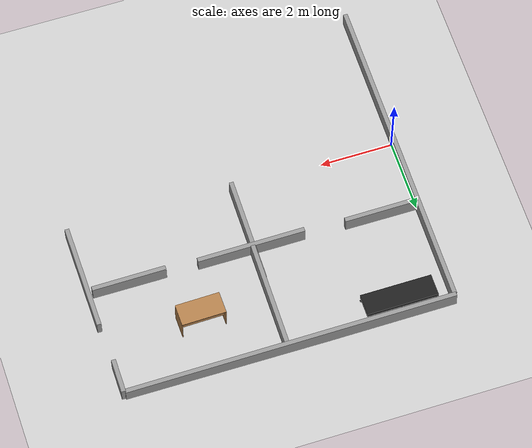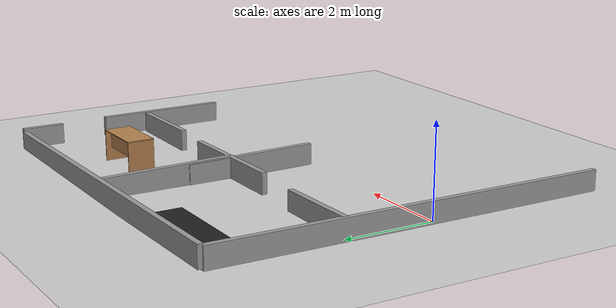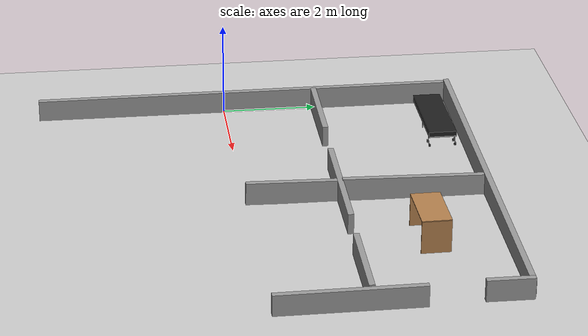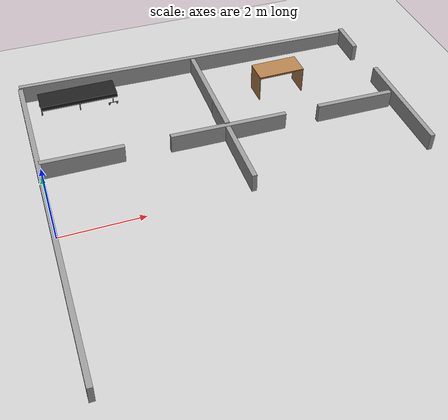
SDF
<sdf version="1.7">
 <world name="default">
  <model name="ground_plane">
   <static>1</static>
   <link name="link">
    <collision name="collision">
     <geometry><plane><normal>0 0 1</normal><size>100 100</size></plane></geometry>
     <surface><friction><ode><mu>100</mu><mu2>50</mu2></ode></friction></surface>
    </collision>
    <visual name="visual">
     <cast_shadows>0</cast_shadows>
     <geometry><plane><normal>0 0 1</normal><size>100 100</size></plane></geometry>
     <material>
      <script><uri>file://media/materials/scripts/gazebo.material</uri><name>Gazebo/Grey</name></script>
     </material>
    </visual>
   </link>
  </model>
  <model name="wall">
   <link name="link">
    <inertial>
     <mass>1</mass>
     <inertia>
      <ixx>0.166667</ixx>
      <ixy>0</ixy>
      <ixz>0</ixz>
      <iyy>0.166667</iyy>
      <iyz>0</iyz>
      <izz>0.166667</izz>
     </inertia>
    </inertial>
    <visual name="visual">
     <geometry><box><size>0.120264 8.94791 0.469751</size></box></geometry>
     <material>
      <script><name>Gazebo/Grey</name><uri>file://media/materials/scripts/gazebo.material</uri></script>
      <shader type="pixel"/>
     </material>
    </visual>
    <collision name="collision">
     <geometry><box><size>0.120264 8.94791 0.469751</size></box></geometry>
     <surface>
      <friction>
       <ode><mu>1</mu><mu2>1</mu2><fdir1>0 0 0</fdir1><slip1>0</slip1><slip2>0</slip2></ode>
       <torsional>
        <coefficient>1</coefficient>
        <patch_radius>0</patch_radius>
        <surface_radius>0</surface_radius>
        <use_patch_radius>1</use_patch_radius>
        <ode><slip>0</slip></ode>
       </torsional>
      </friction>
      <bounce><restitution_coefficient>0</restitution_coefficient><threshold>1e+06</threshold></bounce>
      <contact>
       <collide_without_contact>0</collide_without_contact>
       <collide_without_contact_bitmask>1</collide_without_contact_bitmask>
       <collide_bitmask>1</collide_bitmask>
       <ode>
        <soft_cfm>0</soft_cfm>
        <soft_erp>0.2</soft_erp>
        <kp>1e+13</kp>
        <kd>1</kd>
        <max_vel>0.01</max_vel>
        <min_depth>0</min_depth>
       </ode>
       <bullet>
        <split_impulse>1</split_impulse>
        <split_impulse_penetration_threshold>-0.01</split_impulse_penetration_threshold>
        <soft_cfm>0</soft_cfm>
        <soft_erp>0.2</soft_erp>
        <kp>1e+13</kp>
        <kd>1</kd>
       </bullet>
      </contact>
     </surface>
    </collision>
   </link>
   <static>1</static>
   <pose>-0.031703 0.436973 0.219564 0.003622 0.015237 -0.004097</pose>
  </model>
  <model name="wall_clone_clone">
   <link name="link">
    <inertial>
     <mass>1</mass>
     <inertia>
      <ixx>0.166667</ixx>
      <ixy>0</ixy>
      <ixz>0</ixz>
      <iyy>0.166667</iyy>
      <iyz>0</iyz>
      <izz>0.166667</izz>
     </inertia>
    </inertial>
    <visual name="visual">
     <geometry><box><size>0.120264 8.94791 0.469751</size></box></geometry>
     <material>
      <script><name>Gazebo/Grey</name><uri>file://media/materials/scripts/gazebo.material</uri></script>
      <shader type="pixel"/>
     </material>
    </visual>
    <collision name="collision">
     <geometry><box><size>0.120264 8.94791 0.469751</size></box></geometry>
     <surface>
      <friction>
       <ode><mu>1</mu><mu2>1</mu2><fdir1>0 0 0</fdir1><slip1>0</slip1><slip2>0</slip2></ode>
       <torsional>
        <coefficient>1</coefficient>
        <patch_radius>0</patch_radius>
        <surface_radius>0</surface_radius>
        <use_patch_radius>1</use_patch_radius>
        <ode><slip>0</slip></ode>
       </torsional>
      </friction>
      <bounce><restitution_coefficient>0</restitution_coefficient><threshold>1e+06</threshold></bounce>
      <contact>
       <collide_without_contact>0</collide_without_contact>
       <collide_without_contact_bitmask>1</collide_without_contact_bitmask>
       <collide_bitmask>1</collide_bitmask>
       <ode>
        <soft_cfm>0</soft_cfm>
        <soft_erp>0.2</soft_erp>
        <kp>1e+13</kp>
        <kd>1</kd>
        <max_vel>0.01</max_vel>
        <min_depth>0</min_depth>
       </ode>
       <bullet>
        <split_impulse>1</split_impulse>
        <split_impulse_penetration_threshold>-0.01</split_impulse_penetration_threshold>
        <soft_cfm>0</soft_cfm>
        <soft_erp>0.2</soft_erp>
        <kp>1e+13</kp>
        <kd>1</kd>
       </bullet>
      </contact>
     </surface>
    </collision>
   </link>
   <static>1</static>
   <pose>4.43315 4.93384 0.206052 -0.015237 0.003622 -1.57495</pose>
  </model>
  <model name="wall_3m">
   <link name="link">
    <inertial>
     <mass>0.327712</mass>
     <inertia>
      <ixx>0.240849</ixx>
      <ixy>0</ixy>
      <ixz>0</ixz>
      <iyy>0.00642123</iyy>
      <iyz>0</iyz>
      <izz>0.235218</izz>
     </inertia>
    </inertial>
    <visual name="visual">
     <geometry><box><size>0.120264 2.93234 0.469751</size></box></geometry>
     <material>
      <script><name>Gazebo/Grey</name><uri>file://media/materials/scripts/gazebo.material</uri></script>
      <shader type="pixel"/>
     </material>
    </visual>
    <collision name="collision">
     <geometry><box><size>0.120264 2.93234 0.469751</size></box></geometry>
     <surface>
      <friction>
       <ode><mu>1</mu><mu2>1</mu2><fdir1>0 0 0</fdir1><slip1>0</slip1><slip2>0</slip2></ode>
       <torsional>
        <coefficient>1</coefficient>
        <patch_radius>0</patch_radius>
        <surface_radius>0</surface_radius>
        <use_patch_radius>1</use_patch_radius>
        <ode><slip>0</slip></ode>
       </torsional>
      </friction>
      <bounce><restitution_coefficient>0</restitution_coefficient><threshold>1e+06</threshold></bounce>
      <contact>
       <collide_without_contact>0</collide_without_contact>
       <collide_without_contact_bitmask>1</collide_without_contact_bitmask>
       <collide_bitmask>1</collide_bitmask>
       <ode>
        <soft_cfm>0</soft_cfm>
        <soft_erp>0.2</soft_erp>
        <kp>1e+13</kp>
        <kd>1</kd>
        <max_vel>0.01</max_vel>
        <min_depth>0</min_depth>
       </ode>
       <bullet>
        <split_impulse>1</split_impulse>
        <split_impulse_penetration_threshold>-0.01</split_impulse_penetration_threshold>
        <soft_cfm>0</soft_cfm>
        <soft_erp>0.2</soft_erp>
        <kp>1e+13</kp>
        <kd>1</kd>
       </bullet>
      </contact>
     </surface>
    </collision>
   </link>
   <static>1</static>
   <pose>4.56342 1.92073 0.210327 -0.015237 0.003622 -1.57495</pose>
  </model>
  <model name="wall_3m_clone_0">
   <link name="link">
    <inertial>
     <mass>0.327712</mass>
     <inertia>
      <ixx>0.240849</ixx>
      <ixy>0</ixy>
      <ixz>0</ixz>
      <iyy>0.00642123</iyy>
      <iyz>0</iyz>
      <izz>0.235218</izz>
     </inertia>
    </inertial>
    <visual name="visual">
     <geometry><box><size>0.120264 2.93234 0.469751</size></box></geometry>
     <material>
      <script><name>Gazebo/Grey</name><uri>file://media/materials/scripts/gazebo.material</uri></script>
      <shader type="pixel"/>
     </material>
    </visual>
    <collision name="collision">
     <geometry><box><size>0.120264 2.93234 0.469751</size></box></geometry>
     <surface>
      <friction>
       <ode><mu>1</mu><mu2>1</mu2><fdir1>0 0 0</fdir1><slip1>0</slip1><slip2>0</slip2></ode>
       <torsional>
        <coefficient>1</coefficient>
        <patch_radius>0</patch_radius>
        <surface_radius>0</surface_radius>
        <use_patch_radius>1</use_patch_radius>
        <ode><slip>0</slip></ode>
       </torsional>
      </friction>
      <bounce><restitution_coefficient>0</restitution_coefficient><threshold>1e+06</threshold></bounce>
      <contact>
       <collide_without_contact>0</collide_without_contact>
       <collide_without_contact_bitmask>1</collide_without_contact_bitmask>
       <collide_bitmask>1</collide_bitmask>
       <ode>
        <soft_cfm>0</soft_cfm>
        <soft_erp>0.2</soft_erp>
        <kp>1e+13</kp>
        <kd>1</kd>
        <max_vel>0.01</max_vel>
        <min_depth>0</min_depth>
       </ode>
       <bullet>
        <split_impulse>1</split_impulse>
        <split_impulse_penetration_threshold>-0.01</split_impulse_penetration_threshold>
        <soft_cfm>0</soft_cfm>
        <soft_erp>0.2</soft_erp>
        <kp>1e+13</kp>
        <kd>1</kd>
       </bullet>
      </contact>
     </surface>
    </collision>
   </link>
   <static>1</static>
   <pose>4.5141 1.46532 0.210327 -0.015237 0.003622 -0.006735</pose>
  </model>
  <model name="wall_3m_clone_0_clone">
   <link name="link">
    <inertial>
     <mass>0.327712</mass>
     <inertia>
      <ixx>0.240849</ixx>
      <ixy>0</ixy>
      <ixz>0</ixz>
      <iyy>0.00642123</iyy>
      <iyz>0</iyz>
      <izz>0.235218</izz>
     </inertia>
    </inertial>
    <visual name="visual">
     <geometry><box><size>0.120264 2.93234 0.469751</size></box></geometry>
     <material>
      <script><name>Gazebo/Grey</name><uri>file://media/materials/scripts/gazebo.material</uri></script>
      <shader type="pixel"/>
     </material>
    </visual>
    <collision name="collision">
     <geometry><box><size>0.120264 2.93234 0.469751</size></box></geometry>
     <surface>
      <friction>
       <ode><mu>1</mu><mu2>1</mu2><fdir1>0 0 0</fdir1><slip1>0</slip1><slip2>0</slip2></ode>
       <torsional>
        <coefficient>1</coefficient>
        <patch_radius>0</patch_radius>
        <surface_radius>0</surface_radius>
        <use_patch_radius>1</use_patch_radius>
        <ode><slip>0</slip></ode>
       </torsional>
      </friction>
      <bounce><restitution_coefficient>0</restitution_coefficient><threshold>1e+06</threshold></bounce>
      <contact>
       <collide_without_contact>0</collide_without_contact>
       <collide_without_contact_bitmask>1</collide_without_contact_bitmask>
       <collide_bitmask>1</collide_bitmask>
       <ode>
        <soft_cfm>0</soft_cfm>
        <soft_erp>0.2</soft_erp>
        <kp>1e+13</kp>
        <kd>1</kd>
        <max_vel>0.01</max_vel>
        <min_depth>0</min_depth>
       </ode>
       <bullet>
        <split_impulse>1</split_impulse>
        <split_impulse_penetration_threshold>-0.01</split_impulse_penetration_threshold>
        <soft_cfm>0</soft_cfm>
        <soft_erp>0.2</soft_erp>
        <kp>1e+13</kp>
        <kd>1</kd>
       </bullet>
      </contact>
     </surface>
    </collision>
   </link>
   <static>1</static>
   <pose>4.54501 3.42766 0.210327 -0.015237 0.003622 -0.006735</pose>
  </model>
  <model name="wall_2m">
   <link name="link">
    <inertial>
     <mass>0.223772</mass>
     <inertia>
      <ixx>0.0788765</ixx>
      <ixy>0</ixy>
      <ixz>0</ixz>
      <iyy>0.00438461</iyy>
      <iyz>0</iyz>
      <izz>0.0750313</izz>
     </inertia>
    </inertial>
    <pose>0.058217 -0.377225 -0.005198 0 -0 0</pose>
    <visual name="visual">
     <geometry><box><size>0.120264 2.00229 0.469751</size></box></geometry>
     <material>
      <script><name>Gazebo/Grey</name><uri>file://media/materials/scripts/gazebo.material</uri></script>
      <shader type="pixel"/>
     </material>
    </visual>
    <collision name="collision">
     <geometry><box><size>0.120264 2.00229 0.469751</size></box></geometry>
     <surface>
      <friction>
       <ode><mu>1</mu><mu2>1</mu2><fdir1>0 0 0</fdir1><slip1>0</slip1><slip2>0</slip2></ode>
       <torsional>
        <coefficient>1</coefficient>
        <patch_radius>0</patch_radius>
        <surface_radius>0</surface_radius>
        <use_patch_radius>1</use_patch_radius>
        <ode><slip>0</slip></ode>
       </torsional>
      </friction>
      <bounce><restitution_coefficient>0</restitution_coefficient><threshold>1e+06</threshold></bounce>
      <contact>
       <collide_without_contact>0</collide_without_contact>
       <collide_without_contact_bitmask>1</collide_without_contact_bitmask>
       <collide_bitmask>1</collide_bitmask>
       <ode>
        <soft_cfm>0</soft_cfm>
        <soft_erp>0.2</soft_erp>
        <kp>1e+13</kp>
        <kd>1</kd>
        <max_vel>0.01</max_vel>
        <min_depth>0</min_depth>
       </ode>
       <bullet>
        <split_impulse>1</split_impulse>
        <split_impulse_penetration_threshold>-0.01</split_impulse_penetration_threshold>
        <soft_cfm>0</soft_cfm>
        <soft_erp>0.2</soft_erp>
        <kp>1e+13</kp>
        <kd>1</kd>
       </bullet>
      </contact>
     </surface>
    </collision>
   </link>
   <static>1</static>
   <pose>1.36886 2.0353 0.210327 -0.015237 0.003622 -1.57495</pose>
  </model>
  <model name="wall_2m_clone">
   <link name="link">
    <inertial>
     <mass>0.223772</mass>
     <inertia>
      <ixx>0.0788765</ixx>
      <ixy>0</ixy>
      <ixz>0</ixz>
      <iyy>0.00438461</iyy>
      <iyz>0</iyz>
      <izz>0.0750313</izz>
     </inertia>
    </inertial>
    <pose>0.058217 -0.377225 -0.005198 0 -0 0</pose>
    <visual name="visual">
     <geometry><box><size>0.120264 2.00229 0.469751</size></box></geometry>
     <material>
      <script><name>Gazebo/Grey</name><uri>file://media/materials/scripts/gazebo.material</uri></script>
      <shader type="pixel"/>
     </material>
    </visual>
    <collision name="collision">
     <geometry><box><size>0.120264 2.00229 0.469751</size></box></geometry>
     <surface>
      <friction>
       <ode><mu>1</mu><mu2>1</mu2><fdir1>0 0 0</fdir1><slip1>0</slip1><slip2>0</slip2></ode>
       <torsional>
        <coefficient>1</coefficient>
        <patch_radius>0</patch_radius>
        <surface_radius>0</surface_radius>
        <use_patch_radius>1</use_patch_radius>
        <ode><slip>0</slip></ode>
       </torsional>
      </friction>
      <bounce><restitution_coefficient>0</restitution_coefficient><threshold>1e+06</threshold></bounce>
      <contact>
       <collide_without_contact>0</collide_without_contact>
       <collide_without_contact_bitmask>1</collide_without_contact_bitmask>
       <collide_bitmask>1</collide_bitmask>
       <ode>
        <soft_cfm>0</soft_cfm>
        <soft_erp>0.2</soft_erp>
        <kp>1e+13</kp>
        <kd>1</kd>
        <max_vel>0.01</max_vel>
        <min_depth>0</min_depth>
       </ode>
       <bullet>
        <split_impulse>1</split_impulse>
        <split_impulse_penetration_threshold>-0.01</split_impulse_penetration_threshold>
        <soft_cfm>0</soft_cfm>
        <soft_erp>0.2</soft_erp>
        <kp>1e+13</kp>
        <kd>1</kd>
       </bullet>
      </contact>
     </surface>
    </collision>
   </link>
   <static>1</static>
   <pose>8.26555 1.93518 0.210327 -0.015237 0.003622 -1.57495</pose>
  </model>
  <model name="wall_3m_clone_1_clone">
   <link name="link">
    <inertial>
     <mass>0.327712</mass>
     <inertia>
      <ixx>0.240849</ixx>
      <ixy>0</ixy>
      <ixz>0</ixz>
      <iyy>0.00642123</iyy>
      <iyz>0</iyz>
      <izz>0.235218</izz>
     </inertia>
    </inertial>
    <visual name="visual">
     <geometry><box><size>0.120264 2.93234 0.469751</size></box></geometry>
     <material>
      <script><name>Gazebo/Grey</name><uri>file://media/materials/scripts/gazebo.material</uri></script>
      <shader type="pixel"/>
     </material>
    </visual>
    <collision name="collision">
     <geometry><box><size>0.120264 2.93234 0.469751</size></box></geometry>
     <surface>
      <friction>
       <ode><mu>1</mu><mu2>1</mu2><fdir1>0 0 0</fdir1><slip1>0</slip1><slip2>0</slip2></ode>
       <torsional>
        <coefficient>1</coefficient>
        <patch_radius>0</patch_radius>
        <surface_radius>0</surface_radius>
        <use_patch_radius>1</use_patch_radius>
        <ode><slip>0</slip></ode>
       </torsional>
      </friction>
      <bounce><restitution_coefficient>0</restitution_coefficient><threshold>1e+06</threshold></bounce>
      <contact>
       <collide_without_contact>0</collide_without_contact>
       <collide_without_contact_bitmask>1</collide_without_contact_bitmask>
       <collide_bitmask>1</collide_bitmask>
       <ode>
        <soft_cfm>0</soft_cfm>
        <soft_erp>0.2</soft_erp>
        <kp>1e+13</kp>
        <kd>1</kd>
        <max_vel>0.01</max_vel>
        <min_depth>0</min_depth>
       </ode>
       <bullet>
        <split_impulse>1</split_impulse>
        <split_impulse_penetration_threshold>-0.01</split_impulse_penetration_threshold>
        <soft_cfm>0</soft_cfm>
        <soft_erp>0.2</soft_erp>
        <kp>1e+13</kp>
        <kd>1</kd>
       </bullet>
      </contact>
     </surface>
    </collision>
   </link>
   <static>1</static>
   <pose>9.01173 1.46051 0.196172 -0.003765 -0.015202 -3.13632</pose>
  </model>
  <model name="wall_1">
   <link name="link">
    <inertial>
     <mass>0.104919</mass>
     <inertia>
      <ixx>0.00963536</ixx>
      <ixy>0</ixy>
      <ixz>0</ixz>
      <iyy>0.0020558</iyy>
      <iyz>0</iyz>
      <izz>0.00783247</izz>
     </inertia>
    </inertial>
    <pose>0.064305 -0.884421 -0.004848 0 -0 0</pose>
    <visual name="visual">
     <geometry><box><size>0.120264 0.93881 0.469751</size></box></geometry>
     <material>
      <script><name>Gazebo/Grey</name><uri>file://media/materials/scripts/gazebo.material</uri></script>
      <shader type="pixel"/>
     </material>
    </visual>
    <collision name="collision">
     <geometry><box><size>0.120264 0.93881 0.469751</size></box></geometry>
     <surface>
      <friction>
       <ode><mu>1</mu><mu2>1</mu2><fdir1>0 0 0</fdir1><slip1>0</slip1><slip2>0</slip2></ode>
       <torsional>
        <coefficient>1</coefficient>
        <patch_radius>0</patch_radius>
        <surface_radius>0</surface_radius>
        <use_patch_radius>1</use_patch_radius>
        <ode><slip>0</slip></ode>
       </torsional>
      </friction>
      <bounce><restitution_coefficient>0</restitution_coefficient><threshold>1e+06</threshold></bounce>
      <contact>
       <collide_without_contact>0</collide_without_contact>
       <collide_without_contact_bitmask>1</collide_without_contact_bitmask>
       <collide_bitmask>1</collide_bitmask>
       <ode>
        <soft_cfm>0</soft_cfm>
        <soft_erp>0.2</soft_erp>
        <kp>1e+13</kp>
        <kd>1</kd>
        <max_vel>0.01</max_vel>
        <min_depth>0</min_depth>
       </ode>
       <bullet>
        <split_impulse>1</split_impulse>
        <split_impulse_penetration_threshold>-0.01</split_impulse_penetration_threshold>
        <soft_cfm>0</soft_cfm>
        <soft_erp>0.2</soft_erp>
        <kp>1e+13</kp>
        <kd>1</kd>
       </bullet>
      </contact>
     </surface>
    </collision>
   </link>
   <static>1</static>
   <pose>8.88858 5.359 0.210327 0.002875 0.015396 -0.007808</pose>
  </model>
  <model name="bed">
   <link name="link">
    <inertial>
     <mass>10</mass>
     <inertia><ixx>1</ixx><ixy>0</ixy><ixz>0</ixz><iyy>1</iyy><iyz>0</iyz><izz>1</izz></inertia>
    </inertial>
    <visual name="cushion">
     <pose>-0.295 -0.975 0.2875 0 -0 0</pose>
     <geometry><box><size>0.59 1.95 0.095</size></box></geometry>
     <material>
      <script>
       <uri>model://base_materials/cloth/scripts</uri>
       <uri>model://base_materials/cloth/textures</uri>
       <name>cloth/black</name>
      </script>
     </material>
    </visual>
    <collision name="collision_cushion">
     <pose>-0.295 -0.975 0.2875 0 -0 0</pose>
     <geometry><box><size>0.59 1.95 0.095</size></box></geometry>
    </collision>
    <visual name="top_frame">
     <pose>-0.295 -0.975 0.225 0 -0 0</pose>
     <geometry><box><size>0.59 1.95 0.03</size></box></geometry>
     <material>
      <script><uri>model://base_materials/color/scripts</uri><name>hsr_color/grey</name></script>
     </material>
    </visual>
    <collision name="collision_top_frame">
     <pose>-0.295 -0.975 0.225 0 -0 0</pose>
     <geometry><box><size>0.59 1.95 0.03</size></box></geometry>
    </collision>
    <visual name="right_front_pole">
     <pose>-0.075 -0.0125 0.125 0 -0 0</pose>
     <geometry><cylinder><radius>0.0125</radius><length>0.17</length></cylinder></geometry>
     <material>
      <script><uri>model://base_materials/color/scripts</uri><name>hsr_color/grey</name></script>
     </material>
    </visual>
    <collision name="collision_right_front_pole">
     <pose>-0.075 -0.0125 0.125 0 -0 0</pose>
     <geometry><cylinder><radius>0.0125</radius><length>0.17</length></cylinder></geometry>
    </collision>
    <visual name="right_front_caster">
     <pose>-0.075 -0.0125 0.02 0 1.57 0</pose>
     <geometry><cylinder><radius>0.02</radius><length>0.04</length></cylinder></geometry>
     <material><script><name>Gazebo/Black</name><uri>__default__</uri></script></material>
    </visual>
    <collision name="collision_right_front_caster">
     <pose>-0.075 -0.0125 0.02 0 1.57 0</pose>
     <geometry><cylinder><radius>0.02</radius><length>0.04</length></cylinder></geometry>
    </collision>
    <visual name="right_back_pole">
     <pose>-0.46 -0.0125 0.125 0 -0 0</pose>
     <geometry><cylinder><radius>0.0125</radius><length>0.17</length></cylinder></geometry>
     <material>
      <script><uri>model://base_materials/color/scripts</uri><name>hsr_color/grey</name></script>
     </material>
    </visual>
    <collision name="collision_right_back_pole">
     <pose>-0.46 -0.0125 0.125 0 -0 0</pose>
     <geometry><cylinder><radius>0.0125</radius><length>0.17</length></cylinder></geometry>
    </collision>
    <visual name="right_back_caster">
     <pose>-0.46 -0.0125 0.02 0 1.57 0</pose>
     <geometry><cylinder><radius>0.02</radius><length>0.04</length></cylinder></geometry>
     <material><script><name>Gazebo/Black</name><uri>__default__</uri></script></material>
    </visual>
    <collision name="collision_back_front_caster">
     <pose>-0.46 -0.0125 0.02 0 1.57 0</pose>
     <geometry><cylinder><radius>0.02</radius><length>0.04</length></cylinder></geometry>
    </collision>
    <visual name="center_front_pole">
     <pose>-0.0425 -0.975 0.105 0 -0 0</pose>
     <geometry><cylinder><radius>0.0125</radius><length>0.21</length></cylinder></geometry>
     <material>
      <script><uri>model://base_materials/color/scripts</uri><name>hsr_color/grey</name></script>
     </material>
    </visual>
    <collision name="collision_center_front_pole">
     <pose>-0.0425 -0.975 0.105 0 -0 0</pose>
     <geometry><cylinder><radius>0.0125</radius><length>0.17</length></cylinder></geometry>
    </collision>
    <visual name="center_back_pole">
     <pose>-0.5475 -0.975 0.105 0 -0 0</pose>
     <geometry><cylinder><radius>0.0125</radius><length>0.21</length></cylinder></geometry>
     <material>
      <script><uri>model://base_materials/color/scripts</uri><name>hsr_color/grey</name></script>
     </material>
    </visual>
    <collision name="collision_center_back_pole">
     <pose>-0.5475 -0.975 0.105 0 -0 0</pose>
     <geometry><cylinder><radius>0.0125</radius><length>0.17</length></cylinder></geometry>
    </collision>
    <visual name="left_front_horizon_pole">
     <pose>-0.01 -1.825 0.06 1.57 -0 0</pose>
     <geometry><cylinder><radius>0.01</radius><length>0.25</length></cylinder></geometry>
     <material>
      <script><uri>model://base_materials/color/scripts</uri><name>hsr_color/grey</name></script>
     </material>
    </visual>
    <collision name="collision_left_front_horizon_pole">
     <pose>-0.01 -1.825 0.06 1.57 -0 0</pose>
     <geometry><cylinder><radius>0.01</radius><length>0.25</length></cylinder></geometry>
    </collision>
    <visual name="left_front_vertical_pole">
     <pose>-0.01 -1.825 0.14 0 -0 0</pose>
     <geometry><cylinder><radius>0.01</radius><length>0.14</length></cylinder></geometry>
     <material>
      <script><uri>model://base_materials/color/scripts</uri><name>hsr_color/grey</name></script>
     </material>
    </visual>
    <collision name="collision_left_front_vertical_pole">
     <pose>-0.01 -1.825 0.14 0 -0 0</pose>
     <geometry><cylinder><radius>0.01</radius><length>0.14</length></cylinder></geometry>
    </collision>
    <visual name="left_front_caster_r">
     <pose>-0.02 -1.725 0.025 0 1.57 0</pose>
     <geometry><cylinder><radius>0.025</radius><length>0.04</length></cylinder></geometry>
     <material><script><name>Gazebo/Black</name><uri>__default__</uri></script></material>
    </visual>
    <collision name="collision_left_front_caster_r">
     <pose>-0.02 -1.725 0.025 0 1.57 0</pose>
     <geometry><cylinder><radius>0.025</radius><length>0.04</length></cylinder></geometry>
    </collision>
    <visual name="left_front_caster_l">
     <pose>-0.02 -1.925 0.025 0 1.57 0</pose>
     <geometry><cylinder><radius>0.025</radius><length>0.04</length></cylinder></geometry>
     <material><script><name>Gazebo/Black</name><uri>__default__</uri></script></material>
    </visual>
    <collision name="collision_left_front_caster_l">
     <pose>-0.02 -1.925 0.025 0 1.57 0</pose>
     <geometry><cylinder><radius>0.025</radius><length>0.04</length></cylinder></geometry>
    </collision>
    <visual name="left_back_horizon_pole">
     <pose>-0.58 -1.825 0.06 1.57 -0 0</pose>
     <geometry><cylinder><radius>0.01</radius><length>0.25</length></cylinder></geometry>
     <material>
      <script><uri>model://base_materials/color/scripts</uri><name>hsr_color/grey</name></script>
     </material>
    </visual>
    <collision name="collision_left_back_horizon_pole">
     <pose>-0.58 -1.825 0.06 1.57 -0 0</pose>
     <geometry><cylinder><radius>0.01</radius><length>0.25</length></cylinder></geometry>
    </collision>
    <visual name="left_back_vertical_pole">
     <pose>-0.58 -1.825 0.14 0 -0 0</pose>
     <geometry><cylinder><radius>0.01</radius><length>0.14</length></cylinder></geometry>
     <material>
      <script><uri>model://base_materials/color/scripts</uri><name>hsr_color/grey</name></script>
     </material>
    </visual>
    <collision name="collision_left_back_vertical_pole">
     <pose>-0.58 -1.825 0.14 0 -0 0</pose>
     <geometry><cylinder><radius>0.01</radius><length>0.14</length></cylinder></geometry>
    </collision>
    <visual name="left_back_caster_r">
     <pose>-0.57 -1.725 0.025 0 1.57 0</pose>
     <geometry><cylinder><radius>0.025</radius><length>0.04</length></cylinder></geometry>
     <material><script><name>Gazebo/Black</name><uri>__default__</uri></script></material>
    </visual>
    <collision name="collision_left_back_caster_r">
     <pose>-0.57 -1.725 0.025 0 1.57 0</pose>
     <geometry><cylinder><radius>0.025</radius><length>0.04</length></cylinder></geometry>
    </collision>
    <visual name="left_back_caster_l">
     <pose>-0.57 -1.925 0.025 0 1.57 0</pose>
     <geometry><cylinder><radius>0.025</radius><length>0.04</length></cylinder></geometry>
     <material><script><name>Gazebo/Black</name><uri>__default__</uri></script></material>
    </visual>
    <collision name="collision_left_back_caster_l">
     <pose>-0.57 -1.925 0.025 0 1.57 0</pose>
     <geometry><cylinder><radius>0.025</radius><length>0.04</length></cylinder></geometry>
    </collision>
    <velocity_decay><linear>0</linear><angular>0</angular></velocity_decay>
   </link>
   <static>1</static>
   <pose>0.365923 4.74269 0 0 -0 1.57247</pose>
  </model>
  <model name="office_desk">
   <link name="link">
    <inertial>
     <mass>10</mass>
     <inertia><ixx>1</ixx><ixy>0</ixy><ixz>0</ixz><iyy>1</iyy><iyz>0</iyz><izz>1</izz></inertia>
    </inertial>
    <visual name="top_board">
     <pose>-0.3 0.6 0.69 0 -0 0</pose>
     <geometry><box><size>0.6 1.2 0.02</size></box></geometry>
     <material>
      <script>
       <uri>model://base_materials/wood/scripts/wood.material</uri>
       <name>base_materials/dark_wood</name>
      </script>
     </material>
    </visual>
    <collision name="collision_top_board">
     <pose>-0.3 0.6 0.69 0 -0 0</pose>
     <geometry><box><size>0.6 1.2 0.02</size></box></geometry>
    </collision>
    <visual name="left_board">
     <pose>-0.3 0.01 0.34 0 -0 0</pose>
     <geometry><box><size>0.6 0.02 0.68</size></box></geometry>
     <material>
      <script>
       <uri>model://base_materials/wood/scripts/wood.material</uri>
       <name>base_materials/dark_wood</name>
      </script>
     </material>
    </visual>
    <collision name="collision_left_board">
     <pose>-0.3 0.01 0.34 0 -0 0</pose>
     <geometry><box><size>0.6 0.02 0.68</size></box></geometry>
    </collision>
    <visual name="right_board">
     <pose>-0.3 1.19 0.34 0 -0 0</pose>
     <geometry><box><size>0.6 0.02 0.68</size></box></geometry>
     <material>
      <script>
       <uri>model://base_materials/wood/scripts/wood.material</uri>
       <name>base_materials/dark_wood</name>
      </script>
     </material>
    </visual>
    <collision name="collision_right_board">
     <pose>-0.3 1.19 0.34 0 -0 0</pose>
     <geometry><box><size>0.6 0.02 0.68</size></box></geometry>
    </collision>
    <visual name="center_board">
     <pose>-0.14 0.6 0.49 0 -0 0</pose>
     <geometry><box><size>0.02 1.16 0.4</size></box></geometry>
     <material>
      <script>
       <uri>model://base_materials/wood/scripts/wood.material</uri>
       <name>base_materials/dark_wood</name>
      </script>
     </material>
    </visual>
    <collision name="ollision_center_board">
     <pose>-0.14 0.6 0.49 0 -0 0</pose>
     <geometry><box><size>0.02 1.16 0.4</size></box></geometry>
    </collision>
    <velocity_decay><linear>0</linear><angular>0</angular></velocity_decay>
   </link>
   <static>1</static>
   <pose>7.0107 3.73605 0 0 -0 1.58641</pose>
  </model>
 </world>
</sdf>
